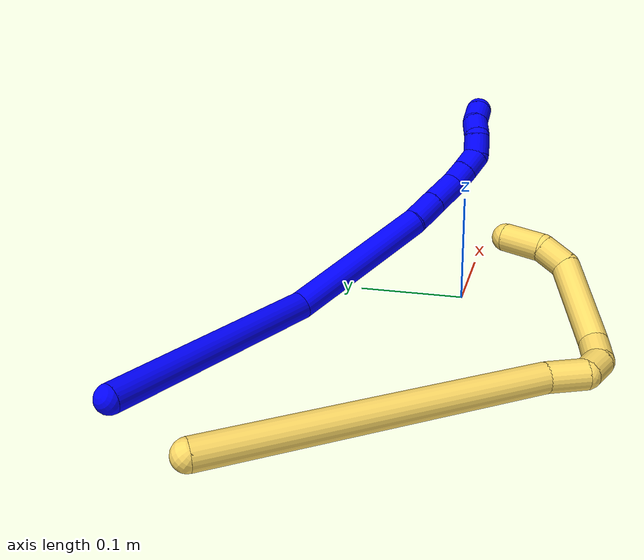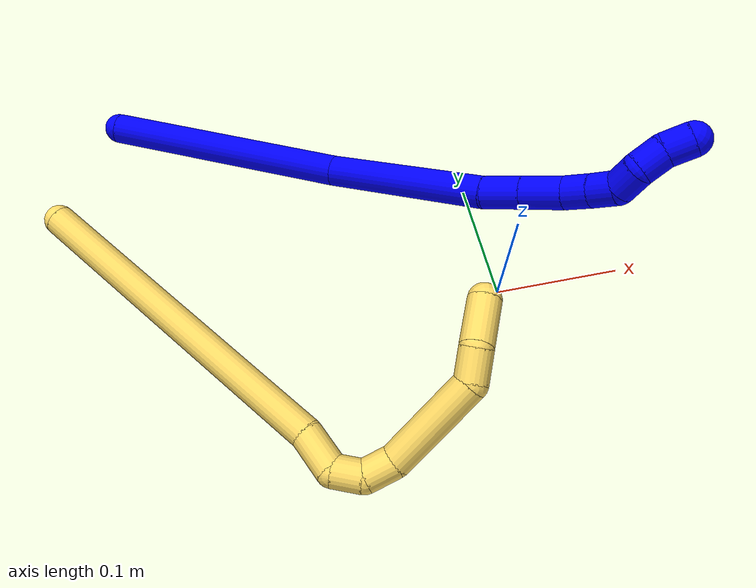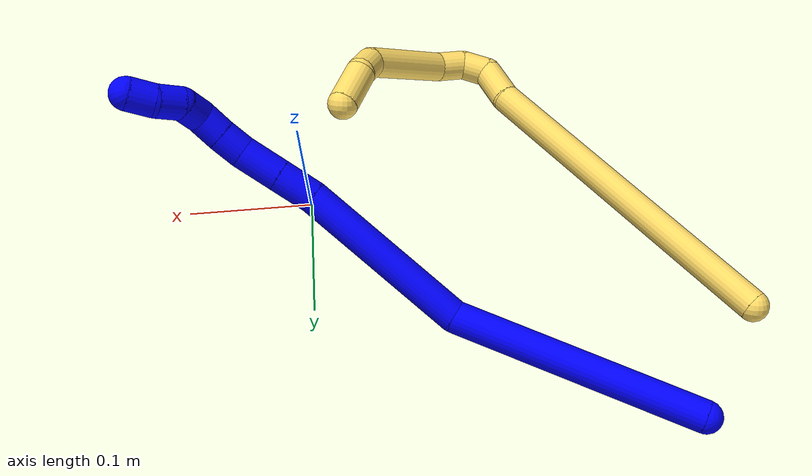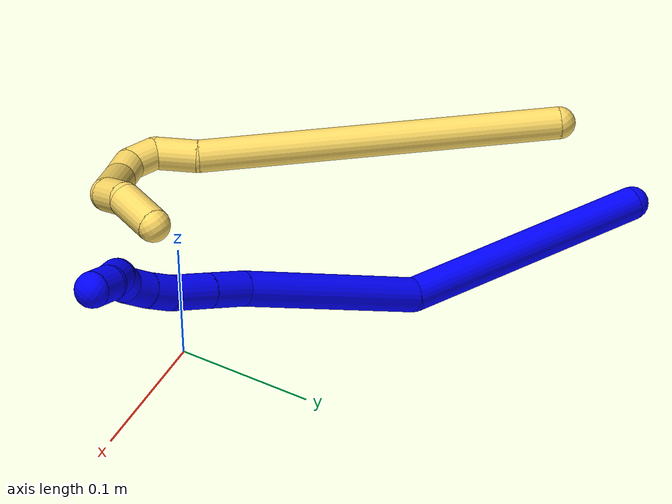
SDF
<sdf version="1.7">
 <world name="default">
  <model name="1">
   <static>0</static>
   <link name="1">
    <collision name="collision-cylinder-e_1_1_4">
     <pose>0.05832 -0.034641 -0.072445 2.69557 0.62814 1.92257</pose>
     <geometry><cylinder><radius>0.0125</radius><length>0.198489</length></cylinder></geometry>
     <surface>
      <friction><ode><mu>1.16</mu><mu2>1.16</mu2><slip1>0</slip1><slip2>0</slip2></ode></friction>
      <contact><ode><kp>1e+06</kp><kd>1</kd><max_vel>0</max_vel><min_depth>0.001</min_depth></ode></contact>
     </surface>
    </collision>
    <visual name="visual-cylinder-e_1_1_4">
     <pose>0.05832 -0.034641 -0.072445 2.69557 0.62814 1.92257</pose>
     <geometry><cylinder><radius>0.0125</radius><length>0.198489</length></cylinder></geometry>
     <material><ambient>0 0 1 1</ambient></material>
    </visual>
    <collision name="collision-cylinder-e_2_4_5">
     <pose>0.163844 -0.110251 -0.175584 2.21378 0.744886 1.3259</pose>
     <geometry><cylinder><radius>0.0125</radius><length>0.139267</length></cylinder></geometry>
     <surface>
      <friction><ode><mu>1.16</mu><mu2>1.16</mu2><slip1>0</slip1><slip2>0</slip2></ode></friction>
      <contact><ode><kp>1e+06</kp><kd>1</kd><max_vel>0</max_vel><min_depth>0.001</min_depth></ode></contact>
     </surface>
    </collision>
    <visual name="visual-cylinder-e_2_4_5">
     <pose>0.163844 -0.110251 -0.175584 2.21378 0.744886 1.3259</pose>
     <geometry><cylinder><radius>0.0125</radius><length>0.139267</length></cylinder></geometry>
     <material><ambient>0 0 1 1</ambient></material>
    </visual>
    <collision name="collision-cylinder-e_3_5_6">
     <pose>0.222629 -0.158103 -0.212972 2.34232 0.878635 1.67734</pose>
     <geometry><cylinder><radius>0.0125</radius><length>0.030086</length></cylinder></geometry>
     <surface>
      <friction><ode><mu>1.16</mu><mu2>1.16</mu2><slip1>0</slip1><slip2>0</slip2></ode></friction>
      <contact><ode><kp>1e+06</kp><kd>1</kd><max_vel>0</max_vel><min_depth>0.001</min_depth></ode></contact>
     </surface>
    </collision>
    <visual name="visual-cylinder-e_3_5_6">
     <pose>0.222629 -0.158103 -0.212972 2.34232 0.878635 1.67734</pose>
     <geometry><cylinder><radius>0.0125</radius><length>0.030086</length></cylinder></geometry>
     <material><ambient>0 0 1 1</ambient></material>
    </visual>
    <collision name="collision-cylinder-e_4_6_7">
     <pose>0.246422 -0.172339 -0.226866 2.34565 0.870482 1.67141</pose>
     <geometry><cylinder><radius>0.0125</radius><length>0.031939</length></cylinder></geometry>
     <surface>
      <friction><ode><mu>1.16</mu><mu2>1.16</mu2><slip1>0</slip1><slip2>0</slip2></ode></friction>
      <contact><ode><kp>1e+06</kp><kd>1</kd><max_vel>0</max_vel><min_depth>0.001</min_depth></ode></contact>
     </surface>
    </collision>
    <visual name="visual-cylinder-e_4_6_7">
     <pose>0.246422 -0.172339 -0.226866 2.34565 0.870482 1.67141</pose>
     <geometry><cylinder><radius>0.0125</radius><length>0.031939</length></cylinder></geometry>
     <material><ambient>0 0 1 1</ambient></material>
    </visual>
    <collision name="collision-cylinder-e_5_7_8">
     <pose>0.266781 -0.184773 -0.237067 2.10441 0.944073 1.45963</pose>
     <geometry><cylinder><radius>0.0125</radius><length>0.020121</length></cylinder></geometry>
     <surface>
      <friction><ode><mu>1.16</mu><mu2>1.16</mu2><slip1>0</slip1><slip2>0</slip2></ode></friction>
      <contact><ode><kp>1e+06</kp><kd>1</kd><max_vel>0</max_vel><min_depth>0.001</min_depth></ode></contact>
     </surface>
    </collision>
    <visual name="visual-cylinder-e_5_7_8">
     <pose>0.266781 -0.184773 -0.237067 2.10441 0.944073 1.45963</pose>
     <geometry><cylinder><radius>0.0125</radius><length>0.020121</length></cylinder></geometry>
     <material><ambient>0 0 1 1</ambient></material>
    </visual>
    <collision name="collision-cylinder-e_6_8_9">
     <pose>0.283142 -0.19522 -0.242233 1.9541 0.956973 1.31039</pose>
     <geometry><cylinder><radius>0.0125</radius><length>0.020093</length></cylinder></geometry>
     <surface>
      <friction><ode><mu>1.16</mu><mu2>1.16</mu2><slip1>0</slip1><slip2>0</slip2></ode></friction>
      <contact><ode><kp>1e+06</kp><kd>1</kd><max_vel>0</max_vel><min_depth>0.001</min_depth></ode></contact>
     </surface>
    </collision>
    <visual name="visual-cylinder-e_6_8_9">
     <pose>0.283142 -0.19522 -0.242233 1.9541 0.956973 1.31039</pose>
     <geometry><cylinder><radius>0.0125</radius><length>0.020093</length></cylinder></geometry>
     <material><ambient>0 0 1 1</ambient></material>
    </visual>
    <collision name="collision-cylinder-e_7_9_10">
     <pose>0.301009 -0.20213 -0.242294 0.632932 1.30694 0.491358</pose>
     <geometry><cylinder><radius>0.0125</radius><length>0.020001</length></cylinder></geometry>
     <surface>
      <friction><ode><mu>1.16</mu><mu2>1.16</mu2><slip1>0</slip1><slip2>0</slip2></ode></friction>
      <contact><ode><kp>1e+06</kp><kd>1</kd><max_vel>0</max_vel><min_depth>0.001</min_depth></ode></contact>
     </surface>
    </collision>
    <visual name="visual-cylinder-e_7_9_10">
     <pose>0.301009 -0.20213 -0.242294 0.632932 1.30694 0.491358</pose>
     <geometry><cylinder><radius>0.0125</radius><length>0.020001</length></cylinder></geometry>
     <material><ambient>0 0 1 1</ambient></material>
    </visual>
    <collision name="collision-cylinder-e_8_10_11">
     <pose>0.320351 -0.202146 -0.242145 -2.47842 1.32024 -2.30669</pose>
     <geometry><cylinder><radius>0.0125</radius><length>0.02</length></cylinder></geometry>
     <surface>
      <friction><ode><mu>1.16</mu><mu2>1.16</mu2><slip1>0</slip1><slip2>0</slip2></ode></friction>
      <contact><ode><kp>1e+06</kp><kd>1</kd><max_vel>0</max_vel><min_depth>0.001</min_depth></ode></contact>
     </surface>
    </collision>
    <visual name="visual-cylinder-e_8_10_11">
     <pose>0.320351 -0.202146 -0.242145 -2.47842 1.32024 -2.30669</pose>
     <geometry><cylinder><radius>0.0125</radius><length>0.02</length></cylinder></geometry>
     <material><ambient>0 0 1 1</ambient></material>
    </visual>
    <collision name="collision-cylinder-e_9_11_2">
     <pose>0.339326 -0.201351 -0.247737 2.94323 1.19062 2.84983</pose>
     <geometry><cylinder><radius>0.0125</radius><length>0.020002</length></cylinder></geometry>
     <surface>
      <friction><ode><mu>1.16</mu><mu2>1.16</mu2><slip1>0</slip1><slip2>0</slip2></ode></friction>
      <contact><ode><kp>1e+06</kp><kd>1</kd><max_vel>0</max_vel><min_depth>0.001</min_depth></ode></contact>
     </surface>
    </collision>
    <visual name="visual-cylinder-e_9_11_2">
     <pose>0.339326 -0.201351 -0.247737 2.94323 1.19062 2.84983</pose>
     <geometry><cylinder><radius>0.0125</radius><length>0.020002</length></cylinder></geometry>
     <material><ambient>0 0 1 1</ambient></material>
    </visual>
    <collision name="collision-sphere-2">
     <pose>0.348614 -0.202082 -0.251376 0 -0 0</pose>
     <geometry><sphere><radius>0.0125</radius></sphere></geometry>
     <surface>
      <friction><ode><mu>1.16</mu><mu2>1.16</mu2><slip1>0</slip1><slip2>0</slip2></ode></friction>
      <contact><ode><kp>1e+06</kp><kd>1</kd><max_vel>0</max_vel><min_depth>0.001</min_depth></ode></contact>
     </surface>
    </collision>
    <visual name="visual-sphere-2">
     <pose>0.348614 -0.202082 -0.251376 0 -0 0</pose>
     <geometry><sphere><radius>0.0125</radius></sphere></geometry>
     <material><ambient>0 0 1 1</ambient></material>
    </visual>
    <collision name="collision-sphere-11">
     <pose>0.330039 -0.200619 -0.244099 0 -0 0</pose>
     <geometry><sphere><radius>0.0125</radius></sphere></geometry>
     <surface>
      <friction><ode><mu>1.16</mu><mu2>1.16</mu2><slip1>0</slip1><slip2>0</slip2></ode></friction>
      <contact><ode><kp>1e+06</kp><kd>1</kd><max_vel>0</max_vel><min_depth>0.001</min_depth></ode></contact>
     </surface>
    </collision>
    <visual name="visual-sphere-11">
     <pose>0.330039 -0.200619 -0.244099 0 -0 0</pose>
     <geometry><sphere><radius>0.0125</radius></sphere></geometry>
     <material><ambient>0 0 1 1</ambient></material>
    </visual>
    <collision name="collision-sphere-10">
     <pose>0.310664 -0.203672 -0.240191 0 -0 0</pose>
     <geometry><sphere><radius>0.0125</radius></sphere></geometry>
     <surface>
      <friction><ode><mu>1.16</mu><mu2>1.16</mu2><slip1>0</slip1><slip2>0</slip2></ode></friction>
      <contact><ode><kp>1e+06</kp><kd>1</kd><max_vel>0</max_vel><min_depth>0.001</min_depth></ode></contact>
     </surface>
    </collision>
    <visual name="visual-sphere-10">
     <pose>0.310664 -0.203672 -0.240191 0 -0 0</pose>
     <geometry><sphere><radius>0.0125</radius></sphere></geometry>
     <material><ambient>0 0 1 1</ambient></material>
    </visual>
    <collision name="collision-sphere-9">
     <pose>0.291355 -0.200587 -0.244397 0 -0 0</pose>
     <geometry><sphere><radius>0.0125</radius></sphere></geometry>
     <surface>
      <friction><ode><mu>1.16</mu><mu2>1.16</mu2><slip1>0</slip1><slip2>0</slip2></ode></friction>
      <contact><ode><kp>1e+06</kp><kd>1</kd><max_vel>0</max_vel><min_depth>0.001</min_depth></ode></contact>
     </surface>
    </collision>
    <visual name="visual-sphere-9">
     <pose>0.291355 -0.200587 -0.244397 0 -0 0</pose>
     <geometry><sphere><radius>0.0125</radius></sphere></geometry>
     <material><ambient>0 0 1 1</ambient></material>
    </visual>
    <collision name="collision-sphere-4">
     <pose>0.11664 -0.069281 -0.14489 0 -0 0</pose>
     <geometry><sphere><radius>0.0125</radius></sphere></geometry>
     <surface>
      <friction><ode><mu>1.16</mu><mu2>1.16</mu2><slip1>0</slip1><slip2>0</slip2></ode></friction>
      <contact><ode><kp>1e+06</kp><kd>1</kd><max_vel>0</max_vel><min_depth>0.001</min_depth></ode></contact>
     </surface>
    </collision>
    <visual name="visual-sphere-4">
     <pose>0.11664 -0.069281 -0.14489 0 -0 0</pose>
     <geometry><sphere><radius>0.0125</radius></sphere></geometry>
     <material><ambient>0 0 1 1</ambient></material>
    </visual>
    <collision name="collision-sphere-1">
     <geometry><sphere><radius>0.0125</radius></sphere></geometry>
     <surface>
      <friction><ode><mu>1.16</mu><mu2>1.16</mu2><slip1>0</slip1><slip2>0</slip2></ode></friction>
      <contact><ode><kp>1e+06</kp><kd>1</kd><max_vel>0</max_vel><min_depth>0.001</min_depth></ode></contact>
     </surface>
    </collision>
    <visual name="visual-sphere-1">
     <geometry><sphere><radius>0.0125</radius></sphere></geometry>
     <material><ambient>0 0 1 1</ambient></material>
    </visual>
    <collision name="collision-sphere-8">
     <pose>0.27493 -0.189853 -0.240069 0 -0 0</pose>
     <geometry><sphere><radius>0.0125</radius></sphere></geometry>
     <surface>
      <friction><ode><mu>1.16</mu><mu2>1.16</mu2><slip1>0</slip1><slip2>0</slip2></ode></friction>
      <contact><ode><kp>1e+06</kp><kd>1</kd><max_vel>0</max_vel><min_depth>0.001</min_depth></ode></contact>
     </surface>
    </collision>
    <visual name="visual-sphere-8">
     <pose>0.27493 -0.189853 -0.240069 0 -0 0</pose>
     <geometry><sphere><radius>0.0125</radius></sphere></geometry>
     <material><ambient>0 0 1 1</ambient></material>
    </visual>
    <collision name="collision-sphere-5">
     <pose>0.211048 -0.151221 -0.206278 0 -0 0</pose>
     <geometry><sphere><radius>0.0125</radius></sphere></geometry>
     <surface>
      <friction><ode><mu>1.16</mu><mu2>1.16</mu2><slip1>0</slip1><slip2>0</slip2></ode></friction>
      <contact><ode><kp>1e+06</kp><kd>1</kd><max_vel>0</max_vel><min_depth>0.001</min_depth></ode></contact>
     </surface>
    </collision>
    <visual name="visual-sphere-5">
     <pose>0.211048 -0.151221 -0.206278 0 -0 0</pose>
     <geometry><sphere><radius>0.0125</radius></sphere></geometry>
     <material><ambient>0 0 1 1</ambient></material>
    </visual>
    <collision name="collision-sphere-6">
     <pose>0.234211 -0.164986 -0.219666 0 -0 0</pose>
     <geometry><sphere><radius>0.0125</radius></sphere></geometry>
     <surface>
      <friction><ode><mu>1.16</mu><mu2>1.16</mu2><slip1>0</slip1><slip2>0</slip2></ode></friction>
      <contact><ode><kp>1e+06</kp><kd>1</kd><max_vel>0</max_vel><min_depth>0.001</min_depth></ode></contact>
     </surface>
    </collision>
    <visual name="visual-sphere-6">
     <pose>0.234211 -0.164986 -0.219666 0 -0 0</pose>
     <geometry><sphere><radius>0.0125</radius></sphere></geometry>
     <material><ambient>0 0 1 1</ambient></material>
    </visual>
    <collision name="collision-sphere-7">
     <pose>0.258633 -0.179693 -0.234066 0 -0 0</pose>
     <geometry><sphere><radius>0.0125</radius></sphere></geometry>
     <surface>
      <friction><ode><mu>1.16</mu><mu2>1.16</mu2><slip1>0</slip1><slip2>0</slip2></ode></friction>
      <contact><ode><kp>1e+06</kp><kd>1</kd><max_vel>0</max_vel><min_depth>0.001</min_depth></ode></contact>
     </surface>
    </collision>
    <visual name="visual-sphere-7">
     <pose>0.258633 -0.179693 -0.234066 0 -0 0</pose>
     <geometry><sphere><radius>0.0125</radius></sphere></geometry>
     <material><ambient>0 0 1 1</ambient></material>
    </visual>
    <inertial>
     <pose>0.158469 -0.10449 -0.153536 0 -0 0</pose>
     <mass>0.5</mass>
     <inertia>
      <ixx>0.000556</ixx>
      <ixy>0</ixy>
      <ixz>0</ixz>
      <iyy>0.001116</iyy>
      <iyz>0</iyz>
      <izz>-0.000205</izz>
     </inertia>
    </inertial>
   </link>
   <pose>-0.282353 0.221968 0.012286 -0.461663 -0.778935 0.203118</pose>
  </model>
  <model name="5">
   <static>0</static>
   <link name="5">
    <collision name="collision-cylinder-e_1_1_4">
     <pose>-0.014851 -0.123493 0.063314 1.09705 -0.106611 -0.065186</pose>
     <geometry><cylinder><radius>0.0125</radius><length>0.279139</length></cylinder></geometry>
     <surface>
      <friction><ode><mu>1.16</mu><mu2>1.16</mu2><slip1>0</slip1><slip2>0</slip2></ode></friction>
      <contact><ode><kp>1e+06</kp><kd>1</kd><max_vel>0</max_vel><min_depth>0.001</min_depth></ode></contact>
     </surface>
    </collision>
    <visual name="visual-cylinder-e_1_1_4">
     <pose>-0.014851 -0.123493 0.063314 1.09705 -0.106611 -0.065186</pose>
     <geometry><cylinder><radius>0.0125</radius><length>0.279139</length></cylinder></geometry>
     <material><ambient>1 0.858824 0.4 1</ambient></material>
    </visual>
    <collision name="collision-cylinder-e_2_4_5">
     <pose>-0.034569 -0.259841 0.135917 0.945057 -0.297709 -0.153009</pose>
     <geometry><cylinder><radius>0.0125</radius><length>0.033181</length></cylinder></geometry>
     <surface>
      <friction><ode><mu>1.16</mu><mu2>1.16</mu2><slip1>0</slip1><slip2>0</slip2></ode></friction>
      <contact><ode><kp>1e+06</kp><kd>1</kd><max_vel>0</max_vel><min_depth>0.001</min_depth></ode></contact>
     </surface>
    </collision>
    <visual name="visual-cylinder-e_2_4_5">
     <pose>-0.034569 -0.259841 0.135917 0.945057 -0.297709 -0.153009</pose>
     <geometry><cylinder><radius>0.0125</radius><length>0.033181</length></cylinder></geometry>
     <material><ambient>1 0.858824 0.4 1</ambient></material>
    </visual>
    <collision name="collision-cylinder-e_3_5_6">
     <pose>-0.035445 -0.283295 0.147613 1.3475 0.351975 0.282061</pose>
     <geometry><cylinder><radius>0.0125</radius><length>0.023155</length></cylinder></geometry>
     <surface>
      <friction><ode><mu>1.16</mu><mu2>1.16</mu2><slip1>0</slip1><slip2>0</slip2></ode></friction>
      <contact><ode><kp>1e+06</kp><kd>1</kd><max_vel>0</max_vel><min_depth>0.001</min_depth></ode></contact>
     </surface>
    </collision>
    <visual name="visual-cylinder-e_3_5_6">
     <pose>-0.035445 -0.283295 0.147613 1.3475 0.351975 0.282061</pose>
     <geometry><cylinder><radius>0.0125</radius><length>0.023155</length></cylinder></geometry>
     <material><ambient>1 0.858824 0.4 1</ambient></material>
    </visual>
    <collision name="collision-cylinder-e_4_6_7">
     <pose>-0.021656 -0.300987 0.149135 1.69491 0.940415 1.04453</pose>
     <geometry><cylinder><radius>0.0125</radius><length>0.024257</length></cylinder></geometry>
     <surface>
      <friction><ode><mu>1.16</mu><mu2>1.16</mu2><slip1>0</slip1><slip2>0</slip2></ode></friction>
      <contact><ode><kp>1e+06</kp><kd>1</kd><max_vel>0</max_vel><min_depth>0.001</min_depth></ode></contact>
     </surface>
    </collision>
    <visual name="visual-cylinder-e_4_6_7">
     <pose>-0.021656 -0.300987 0.149135 1.69491 0.940415 1.04453</pose>
     <geometry><cylinder><radius>0.0125</radius><length>0.024257</length></cylinder></geometry>
     <material><ambient>1 0.858824 0.4 1</ambient></material>
    </visual>
    <collision name="collision-cylinder-e_5_7_8">
     <pose>0.025843 -0.316979 0.152571 1.1187 1.3142 0.899864</pose>
     <geometry><cylinder><radius>0.0125</radius><length>0.077955</length></cylinder></geometry>
     <surface>
      <friction><ode><mu>1.16</mu><mu2>1.16</mu2><slip1>0</slip1><slip2>0</slip2></ode></friction>
      <contact><ode><kp>1e+06</kp><kd>1</kd><max_vel>0</max_vel><min_depth>0.001</min_depth></ode></contact>
     </surface>
    </collision>
    <visual name="visual-cylinder-e_5_7_8">
     <pose>0.025843 -0.316979 0.152571 1.1187 1.3142 0.899864</pose>
     <geometry><cylinder><radius>0.0125</radius><length>0.077955</length></cylinder></geometry>
     <material><ambient>1 0.858824 0.4 1</ambient></material>
    </visual>
    <collision name="collision-cylinder-e_6_8_9">
     <pose>0.075362 -0.322185 0.154083 -2.22118 1.19665 -1.88412</pose>
     <geometry><cylinder><radius>0.0125</radius><length>0.025391</length></cylinder></geometry>
     <surface>
      <friction><ode><mu>1.16</mu><mu2>1.16</mu2><slip1>0</slip1><slip2>0</slip2></ode></friction>
      <contact><ode><kp>1e+06</kp><kd>1</kd><max_vel>0</max_vel><min_depth>0.001</min_depth></ode></contact>
     </surface>
    </collision>
    <visual name="visual-cylinder-e_6_8_9">
     <pose>0.075362 -0.322185 0.154083 -2.22118 1.19665 -1.88412</pose>
     <geometry><cylinder><radius>0.0125</radius><length>0.025391</length></cylinder></geometry>
     <material><ambient>1 0.858824 0.4 1</ambient></material>
    </visual>
    <collision name="collision-cylinder-e_7_9_2">
     <pose>0.101833 -0.315781 0.140379 -2.89768 0.917033 -2.65482</pose>
     <geometry><cylinder><radius>0.0125</radius><length>0.036921</length></cylinder></geometry>
     <surface>
      <friction><ode><mu>1.16</mu><mu2>1.16</mu2><slip1>0</slip1><slip2>0</slip2></ode></friction>
      <contact><ode><kp>1e+06</kp><kd>1</kd><max_vel>0</max_vel><min_depth>0.001</min_depth></ode></contact>
     </surface>
    </collision>
    <visual name="visual-cylinder-e_7_9_2">
     <pose>0.101833 -0.315781 0.140379 -2.89768 0.917033 -2.65482</pose>
     <geometry><cylinder><radius>0.0125</radius><length>0.036921</length></cylinder></geometry>
     <material><ambient>1 0.858824 0.4 1</ambient></material>
    </visual>
    <collision name="collision-sphere-2">
     <pose>0.116487 -0.31307 0.129483 0 -0 0</pose>
     <geometry><sphere><radius>0.0125</radius></sphere></geometry>
     <surface>
      <friction><ode><mu>1.16</mu><mu2>1.16</mu2><slip1>0</slip1><slip2>0</slip2></ode></friction>
      <contact><ode><kp>1e+06</kp><kd>1</kd><max_vel>0</max_vel><min_depth>0.001</min_depth></ode></contact>
     </surface>
    </collision>
    <visual name="visual-sphere-2">
     <pose>0.116487 -0.31307 0.129483 0 -0 0</pose>
     <geometry><sphere><radius>0.0125</radius></sphere></geometry>
     <material><ambient>1 0.858824 0.4 1</ambient></material>
    </visual>
    <collision name="collision-sphere-9">
     <pose>0.087179 -0.318492 0.151274 0 -0 0</pose>
     <geometry><sphere><radius>0.0125</radius></sphere></geometry>
     <surface>
      <friction><ode><mu>1.16</mu><mu2>1.16</mu2><slip1>0</slip1><slip2>0</slip2></ode></friction>
      <contact><ode><kp>1e+06</kp><kd>1</kd><max_vel>0</max_vel><min_depth>0.001</min_depth></ode></contact>
     </surface>
    </collision>
    <visual name="visual-sphere-9">
     <pose>0.087179 -0.318492 0.151274 0 -0 0</pose>
     <geometry><sphere><radius>0.0125</radius></sphere></geometry>
     <material><ambient>1 0.858824 0.4 1</ambient></material>
    </visual>
    <collision name="collision-sphere-4">
     <pose>-0.029703 -0.246986 0.126627 0 -0 0</pose>
     <geometry><sphere><radius>0.0125</radius></sphere></geometry>
     <surface>
      <friction><ode><mu>1.16</mu><mu2>1.16</mu2><slip1>0</slip1><slip2>0</slip2></ode></friction>
      <contact><ode><kp>1e+06</kp><kd>1</kd><max_vel>0</max_vel><min_depth>0.001</min_depth></ode></contact>
     </surface>
    </collision>
    <visual name="visual-sphere-4">
     <pose>-0.029703 -0.246986 0.126627 0 -0 0</pose>
     <geometry><sphere><radius>0.0125</radius></sphere></geometry>
     <material><ambient>1 0.858824 0.4 1</ambient></material>
    </visual>
    <collision name="collision-sphere-1">
     <geometry><sphere><radius>0.0125</radius></sphere></geometry>
     <surface>
      <friction><ode><mu>1.16</mu><mu2>1.16</mu2><slip1>0</slip1><slip2>0</slip2></ode></friction>
      <contact><ode><kp>1e+06</kp><kd>1</kd><max_vel>0</max_vel><min_depth>0.001</min_depth></ode></contact>
     </surface>
    </collision>
    <visual name="visual-sphere-1">
     <geometry><sphere><radius>0.0125</radius></sphere></geometry>
     <material><ambient>1 0.858824 0.4 1</ambient></material>
    </visual>
    <collision name="collision-sphere-8">
     <pose>0.063544 -0.325878 0.156893 0 -0 0</pose>
     <geometry><sphere><radius>0.0125</radius></sphere></geometry>
     <surface>
      <friction><ode><mu>1.16</mu><mu2>1.16</mu2><slip1>0</slip1><slip2>0</slip2></ode></friction>
      <contact><ode><kp>1e+06</kp><kd>1</kd><max_vel>0</max_vel><min_depth>0.001</min_depth></ode></contact>
     </surface>
    </collision>
    <visual name="visual-sphere-8">
     <pose>0.063544 -0.325878 0.156893 0 -0 0</pose>
     <geometry><sphere><radius>0.0125</radius></sphere></geometry>
     <material><ambient>1 0.858824 0.4 1</ambient></material>
    </visual>
    <collision name="collision-sphere-5">
     <pose>-0.039436 -0.272697 0.145206 0 -0 0</pose>
     <geometry><sphere><radius>0.0125</radius></sphere></geometry>
     <surface>
      <friction><ode><mu>1.16</mu><mu2>1.16</mu2><slip1>0</slip1><slip2>0</slip2></ode></friction>
      <contact><ode><kp>1e+06</kp><kd>1</kd><max_vel>0</max_vel><min_depth>0.001</min_depth></ode></contact>
     </surface>
    </collision>
    <visual name="visual-sphere-5">
     <pose>-0.039436 -0.272697 0.145206 0 -0 0</pose>
     <geometry><sphere><radius>0.0125</radius></sphere></geometry>
     <material><ambient>1 0.858824 0.4 1</ambient></material>
    </visual>
    <collision name="collision-sphere-6">
     <pose>-0.031453 -0.293893 0.15002 0 -0 0</pose>
     <geometry><sphere><radius>0.0125</radius></sphere></geometry>
     <surface>
      <friction><ode><mu>1.16</mu><mu2>1.16</mu2><slip1>0</slip1><slip2>0</slip2></ode></friction>
      <contact><ode><kp>1e+06</kp><kd>1</kd><max_vel>0</max_vel><min_depth>0.001</min_depth></ode></contact>
     </surface>
    </collision>
    <visual name="visual-sphere-6">
     <pose>-0.031453 -0.293893 0.15002 0 -0 0</pose>
     <geometry><sphere><radius>0.0125</radius></sphere></geometry>
     <material><ambient>1 0.858824 0.4 1</ambient></material>
    </visual>
    <collision name="collision-sphere-7">
     <pose>-0.011859 -0.308081 0.14825 0 -0 0</pose>
     <geometry><sphere><radius>0.0125</radius></sphere></geometry>
     <surface>
      <friction><ode><mu>1.16</mu><mu2>1.16</mu2><slip1>0</slip1><slip2>0</slip2></ode></friction>
      <contact><ode><kp>1e+06</kp><kd>1</kd><max_vel>0</max_vel><min_depth>0.001</min_depth></ode></contact>
     </surface>
    </collision>
    <visual name="visual-sphere-7">
     <pose>-0.011859 -0.308081 0.14825 0 -0 0</pose>
     <geometry><sphere><radius>0.0125</radius></sphere></geometry>
     <material><ambient>1 0.858824 0.4 1</ambient></material>
    </visual>
    <inertial>
     <pose>0.002098 -0.203008 0.100415 0 -0 0</pose>
     <mass>0.5</mass>
     <inertia>
      <ixx>0.001717</ixx>
      <ixy>0</ixy>
      <ixz>0</ixz>
      <iyy>0.000758</iyy>
      <iyz>0</iyz>
      <izz>0.001783</izz>
     </inertia>
    </inertial>
   </link>
   <pose>-0.338918 0.13461 0.01181 0.397707 -0.60825 0.766479</pose>
  </model>
 </world>
</sdf>
